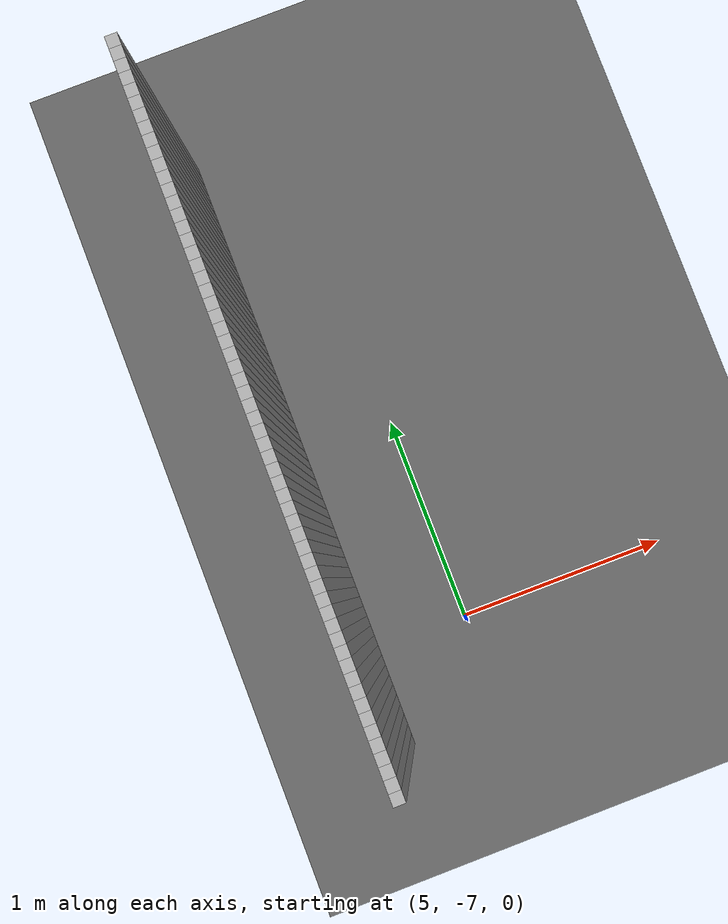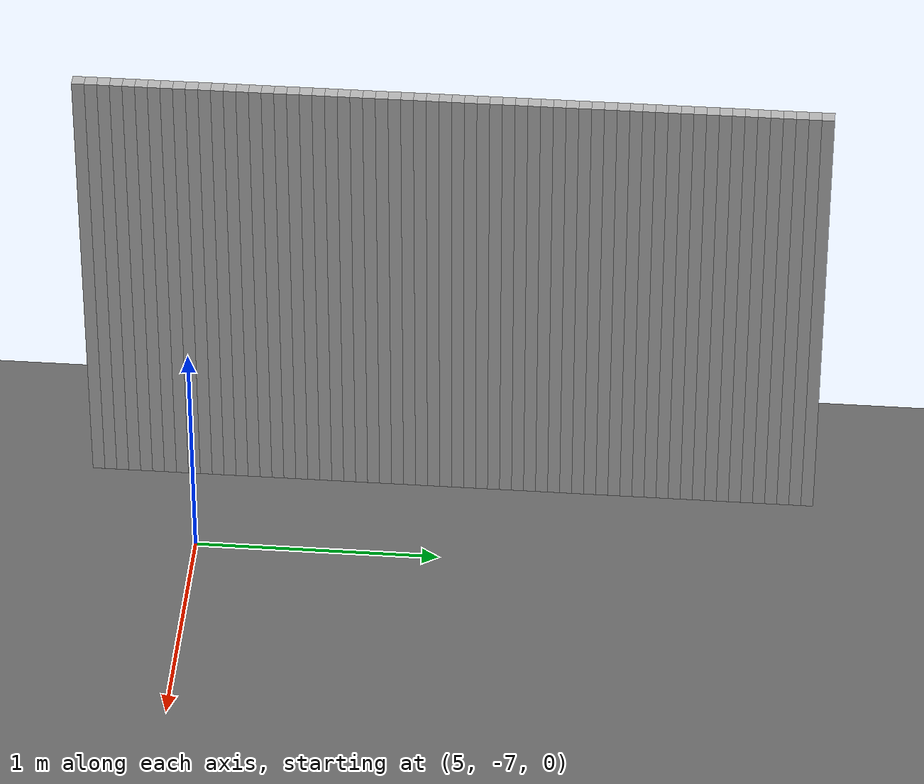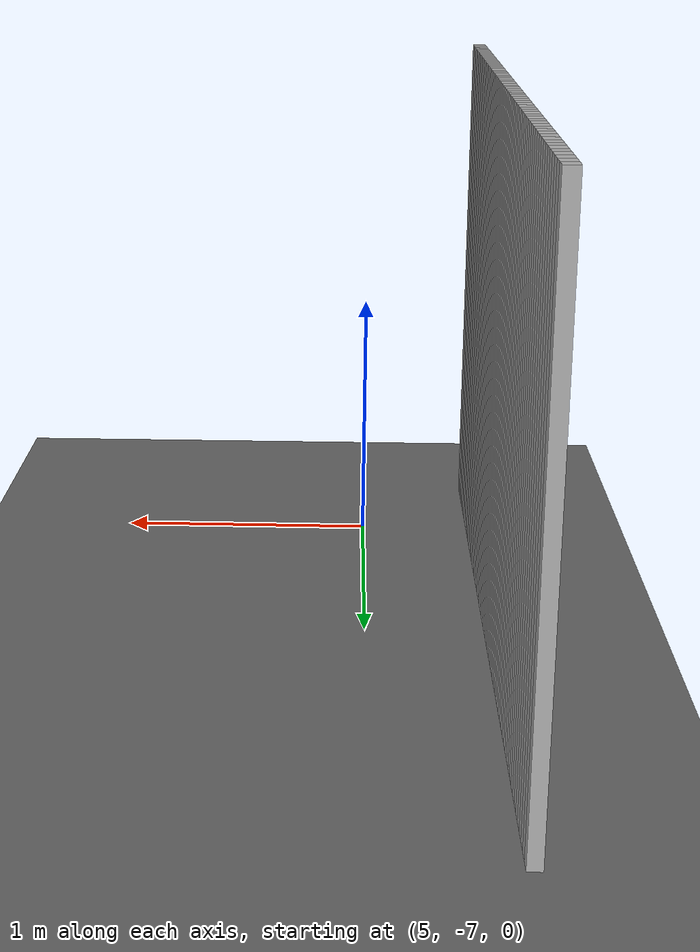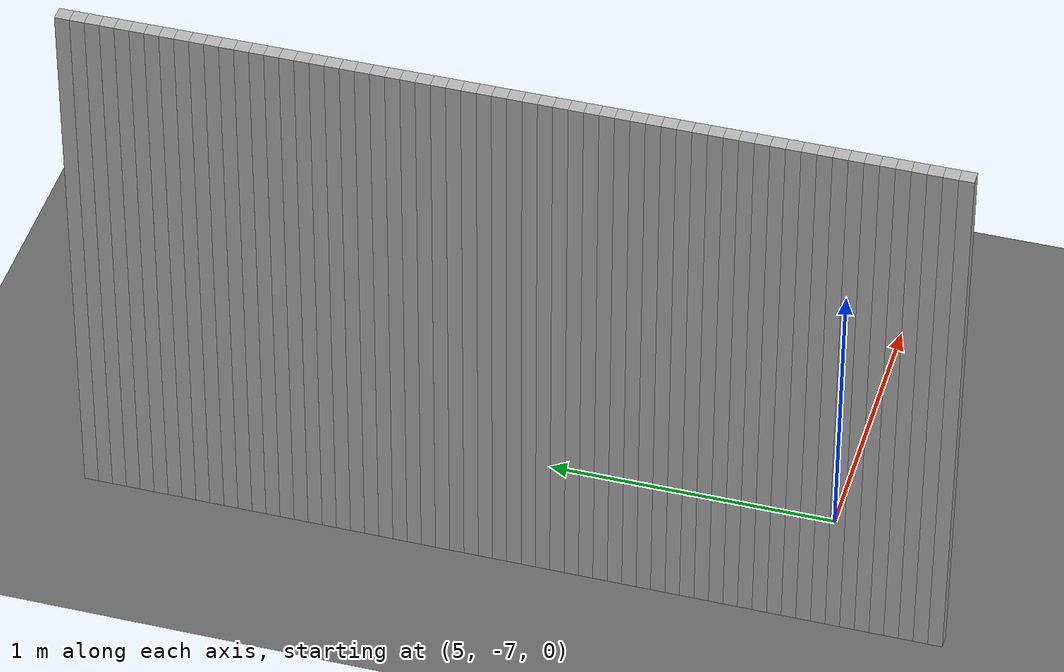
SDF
<sdf version="1.8">
 <world name="real_map">
  <model name="ground">
   <static>true</static>
   <link name="l">
    <collision name="c"><geometry><plane><normal>0 0 1</normal><size>100 100</size></plane></geometry></collision>
    <visual name="v">
     <geometry><plane><normal>0 0 1</normal><size>100 100</size></plane></geometry>
     <material><ambient>0.3 0.3 0.3 1</ambient><diffuse>0.4 0.4 0.4 1</diffuse></material>
    </visual>
   </link>
  </model>
  <model name="walls">
   <static>true</static>
   <link name="w1316">
    <pose>4.534 -4.508 1.000 0 0 0</pose>
    <collision name="c"><geometry><box><size>0.050 0.050 2.000</size></box></geometry></collision>
    <visual name="v">
     <geometry><box><size>0.050 0.050 2.000</size></box></geometry>
     <material><ambient>0.7 0.7 0.7 1</ambient><diffuse>0.7 0.7 0.7 1</diffuse></material>
    </visual>
   </link>
   <link name="w1318">
    <pose>4.534 -4.558 1.000 0 0 0</pose>
    <collision name="c"><geometry><box><size>0.050 0.050 2.000</size></box></geometry></collision>
    <visual name="v">
     <geometry><box><size>0.050 0.050 2.000</size></box></geometry>
     <material><ambient>0.7 0.7 0.7 1</ambient><diffuse>0.7 0.7 0.7 1</diffuse></material>
    </visual>
   </link>
   <link name="w1320">
    <pose>4.534 -4.608 1.000 0 0 0</pose>
    <collision name="c"><geometry><box><size>0.050 0.050 2.000</size></box></geometry></collision>
    <visual name="v">
     <geometry><box><size>0.050 0.050 2.000</size></box></geometry>
     <material><ambient>0.7 0.7 0.7 1</ambient><diffuse>0.7 0.7 0.7 1</diffuse></material>
    </visual>
   </link>
   <link name="w1322">
    <pose>4.534 -4.658 1.000 0 0 0</pose>
    <collision name="c"><geometry><box><size>0.050 0.050 2.000</size></box></geometry></collision>
    <visual name="v">
     <geometry><box><size>0.050 0.050 2.000</size></box></geometry>
     <material><ambient>0.7 0.7 0.7 1</ambient><diffuse>0.7 0.7 0.7 1</diffuse></material>
    </visual>
   </link>
   <link name="w1324">
    <pose>4.534 -4.708 1.000 0 0 0</pose>
    <collision name="c"><geometry><box><size>0.050 0.050 2.000</size></box></geometry></collision>
    <visual name="v">
     <geometry><box><size>0.050 0.050 2.000</size></box></geometry>
     <material><ambient>0.7 0.7 0.7 1</ambient><diffuse>0.7 0.7 0.7 1</diffuse></material>
    </visual>
   </link>
   <link name="w1326">
    <pose>4.534 -4.758 1.000 0 0 0</pose>
    <collision name="c"><geometry><box><size>0.050 0.050 2.000</size></box></geometry></collision>
    <visual name="v">
     <geometry><box><size>0.050 0.050 2.000</size></box></geometry>
     <material><ambient>0.7 0.7 0.7 1</ambient><diffuse>0.7 0.7 0.7 1</diffuse></material>
    </visual>
   </link>
   <link name="w1328">
    <pose>4.534 -4.808 1.000 0 0 0</pose>
    <collision name="c"><geometry><box><size>0.050 0.050 2.000</size></box></geometry></collision>
    <visual name="v">
     <geometry><box><size>0.050 0.050 2.000</size></box></geometry>
     <material><ambient>0.7 0.7 0.7 1</ambient><diffuse>0.7 0.7 0.7 1</diffuse></material>
    </visual>
   </link>
   <link name="w1330">
    <pose>4.534 -4.858 1.000 0 0 0</pose>
    <collision name="c"><geometry><box><size>0.050 0.050 2.000</size></box></geometry></collision>
    <visual name="v">
     <geometry><box><size>0.050 0.050 2.000</size></box></geometry>
     <material><ambient>0.7 0.7 0.7 1</ambient><diffuse>0.7 0.7 0.7 1</diffuse></material>
    </visual>
   </link>
   <link name="w1332">
    <pose>4.534 -4.908 1.000 0 0 0</pose>
    <collision name="c"><geometry><box><size>0.050 0.050 2.000</size></box></geometry></collision>
    <visual name="v">
     <geometry><box><size>0.050 0.050 2.000</size></box></geometry>
     <material><ambient>0.7 0.7 0.7 1</ambient><diffuse>0.7 0.7 0.7 1</diffuse></material>
    </visual>
   </link>
   <link name="w1334">
    <pose>4.534 -4.958 1.000 0 0 0</pose>
    <collision name="c"><geometry><box><size>0.050 0.050 2.000</size></box></geometry></collision>
    <visual name="v">
     <geometry><box><size>0.050 0.050 2.000</size></box></geometry>
     <material><ambient>0.7 0.7 0.7 1</ambient><diffuse>0.7 0.7 0.7 1</diffuse></material>
    </visual>
   </link>
   <link name="w1336">
    <pose>4.534 -5.008 1.000 0 0 0</pose>
    <collision name="c"><geometry><box><size>0.050 0.050 2.000</size></box></geometry></collision>
    <visual name="v">
     <geometry><box><size>0.050 0.050 2.000</size></box></geometry>
     <material><ambient>0.7 0.7 0.7 1</ambient><diffuse>0.7 0.7 0.7 1</diffuse></material>
    </visual>
   </link>
   <link name="w1338">
    <pose>4.534 -5.058 1.000 0 0 0</pose>
    <collision name="c"><geometry><box><size>0.050 0.050 2.000</size></box></geometry></collision>
    <visual name="v">
     <geometry><box><size>0.050 0.050 2.000</size></box></geometry>
     <material><ambient>0.7 0.7 0.7 1</ambient><diffuse>0.7 0.7 0.7 1</diffuse></material>
    </visual>
   </link>
   <link name="w1340">
    <pose>4.534 -5.108 1.000 0 0 0</pose>
    <collision name="c"><geometry><box><size>0.050 0.050 2.000</size></box></geometry></collision>
    <visual name="v">
     <geometry><box><size>0.050 0.050 2.000</size></box></geometry>
     <material><ambient>0.7 0.7 0.7 1</ambient><diffuse>0.7 0.7 0.7 1</diffuse></material>
    </visual>
   </link>
   <link name="w1342">
    <pose>4.534 -5.158 1.000 0 0 0</pose>
    <collision name="c"><geometry><box><size>0.050 0.050 2.000</size></box></geometry></collision>
    <visual name="v">
     <geometry><box><size>0.050 0.050 2.000</size></box></geometry>
     <material><ambient>0.7 0.7 0.7 1</ambient><diffuse>0.7 0.7 0.7 1</diffuse></material>
    </visual>
   </link>
   <link name="w1344">
    <pose>4.534 -5.208 1.000 0 0 0</pose>
    <collision name="c"><geometry><box><size>0.050 0.050 2.000</size></box></geometry></collision>
    <visual name="v">
     <geometry><box><size>0.050 0.050 2.000</size></box></geometry>
     <material><ambient>0.7 0.7 0.7 1</ambient><diffuse>0.7 0.7 0.7 1</diffuse></material>
    </visual>
   </link>
   <link name="w1346">
    <pose>4.534 -5.258 1.000 0 0 0</pose>
    <collision name="c"><geometry><box><size>0.050 0.050 2.000</size></box></geometry></collision>
    <visual name="v">
     <geometry><box><size>0.050 0.050 2.000</size></box></geometry>
     <material><ambient>0.7 0.7 0.7 1</ambient><diffuse>0.7 0.7 0.7 1</diffuse></material>
    </visual>
   </link>
   <link name="w1348">
    <pose>4.534 -5.308 1.000 0 0 0</pose>
    <collision name="c"><geometry><box><size>0.050 0.050 2.000</size></box></geometry></collision>
    <visual name="v">
     <geometry><box><size>0.050 0.050 2.000</size></box></geometry>
     <material><ambient>0.7 0.7 0.7 1</ambient><diffuse>0.7 0.7 0.7 1</diffuse></material>
    </visual>
   </link>
   <link name="w1350">
    <pose>4.534 -5.358 1.000 0 0 0</pose>
    <collision name="c"><geometry><box><size>0.050 0.050 2.000</size></box></geometry></collision>
    <visual name="v">
     <geometry><box><size>0.050 0.050 2.000</size></box></geometry>
     <material><ambient>0.7 0.7 0.7 1</ambient><diffuse>0.7 0.7 0.7 1</diffuse></material>
    </visual>
   </link>
   <link name="w1352">
    <pose>4.534 -5.408 1.000 0 0 0</pose>
    <collision name="c"><geometry><box><size>0.050 0.050 2.000</size></box></geometry></collision>
    <visual name="v">
     <geometry><box><size>0.050 0.050 2.000</size></box></geometry>
     <material><ambient>0.7 0.7 0.7 1</ambient><diffuse>0.7 0.7 0.7 1</diffuse></material>
    </visual>
   </link>
   <link name="w1354">
    <pose>4.534 -5.458 1.000 0 0 0</pose>
    <collision name="c"><geometry><box><size>0.050 0.050 2.000</size></box></geometry></collision>
    <visual name="v">
     <geometry><box><size>0.050 0.050 2.000</size></box></geometry>
     <material><ambient>0.7 0.7 0.7 1</ambient><diffuse>0.7 0.7 0.7 1</diffuse></material>
    </visual>
   </link>
   <link name="w1356">
    <pose>4.534 -5.508 1.000 0 0 0</pose>
    <collision name="c"><geometry><box><size>0.050 0.050 2.000</size></box></geometry></collision>
    <visual name="v">
     <geometry><box><size>0.050 0.050 2.000</size></box></geometry>
     <material><ambient>0.7 0.7 0.7 1</ambient><diffuse>0.7 0.7 0.7 1</diffuse></material>
    </visual>
   </link>
   <link name="w1358">
    <pose>4.534 -5.558 1.000 0 0 0</pose>
    <collision name="c"><geometry><box><size>0.050 0.050 2.000</size></box></geometry></collision>
    <visual name="v">
     <geometry><box><size>0.050 0.050 2.000</size></box></geometry>
     <material><ambient>0.7 0.7 0.7 1</ambient><diffuse>0.7 0.7 0.7 1</diffuse></material>
    </visual>
   </link>
   <link name="w1360">
    <pose>4.534 -5.608 1.000 0 0 0</pose>
    <collision name="c"><geometry><box><size>0.050 0.050 2.000</size></box></geometry></collision>
    <visual name="v">
     <geometry><box><size>0.050 0.050 2.000</size></box></geometry>
     <material><ambient>0.7 0.7 0.7 1</ambient><diffuse>0.7 0.7 0.7 1</diffuse></material>
    </visual>
   </link>
   <link name="w1362">
    <pose>4.534 -5.658 1.000 0 0 0</pose>
    <collision name="c"><geometry><box><size>0.050 0.050 2.000</size></box></geometry></collision>
    <visual name="v">
     <geometry><box><size>0.050 0.050 2.000</size></box></geometry>
     <material><ambient>0.7 0.7 0.7 1</ambient><diffuse>0.7 0.7 0.7 1</diffuse></material>
    </visual>
   </link>
   <link name="w1364">
    <pose>4.534 -5.708 1.000 0 0 0</pose>
    <collision name="c"><geometry><box><size>0.050 0.050 2.000</size></box></geometry></collision>
    <visual name="v">
     <geometry><box><size>0.050 0.050 2.000</size></box></geometry>
     <material><ambient>0.7 0.7 0.7 1</ambient><diffuse>0.7 0.7 0.7 1</diffuse></material>
    </visual>
   </link>
   <link name="w1366">
    <pose>4.534 -5.758 1.000 0 0 0</pose>
    <collision name="c"><geometry><box><size>0.050 0.050 2.000</size></box></geometry></collision>
    <visual name="v">
     <geometry><box><size>0.050 0.050 2.000</size></box></geometry>
     <material><ambient>0.7 0.7 0.7 1</ambient><diffuse>0.7 0.7 0.7 1</diffuse></material>
    </visual>
   </link>
   <link name="w1368">
    <pose>4.534 -5.808 1.000 0 0 0</pose>
    <collision name="c"><geometry><box><size>0.050 0.050 2.000</size></box></geometry></collision>
    <visual name="v">
     <geometry><box><size>0.050 0.050 2.000</size></box></geometry>
     <material><ambient>0.7 0.7 0.7 1</ambient><diffuse>0.7 0.7 0.7 1</diffuse></material>
    </visual>
   </link>
   <link name="w1370">
    <pose>4.534 -5.858 1.000 0 0 0</pose>
    <collision name="c"><geometry><box><size>0.050 0.050 2.000</size></box></geometry></collision>
    <visual name="v">
     <geometry><box><size>0.050 0.050 2.000</size></box></geometry>
     <material><ambient>0.7 0.7 0.7 1</ambient><diffuse>0.7 0.7 0.7 1</diffuse></material>
    </visual>
   </link>
   <link name="w1372">
    <pose>4.534 -5.908 1.000 0 0 0</pose>
    <collision name="c"><geometry><box><size>0.050 0.050 2.000</size></box></geometry></collision>
    <visual name="v">
     <geometry><box><size>0.050 0.050 2.000</size></box></geometry>
     <material><ambient>0.7 0.7 0.7 1</ambient><diffuse>0.7 0.7 0.7 1</diffuse></material>
    </visual>
   </link>
   <link name="w1374">
    <pose>4.534 -5.958 1.000 0 0 0</pose>
    <collision name="c"><geometry><box><size>0.050 0.050 2.000</size></box></geometry></collision>
    <visual name="v">
     <geometry><box><size>0.050 0.050 2.000</size></box></geometry>
     <material><ambient>0.7 0.7 0.7 1</ambient><diffuse>0.7 0.7 0.7 1</diffuse></material>
    </visual>
   </link>
   <link name="w1376">
    <pose>4.534 -6.008 1.000 0 0 0</pose>
    <collision name="c"><geometry><box><size>0.050 0.050 2.000</size></box></geometry></collision>
    <visual name="v">
     <geometry><box><size>0.050 0.050 2.000</size></box></geometry>
     <material><ambient>0.7 0.7 0.7 1</ambient><diffuse>0.7 0.7 0.7 1</diffuse></material>
    </visual>
   </link>
   <link name="w1378">
    <pose>4.534 -6.058 1.000 0 0 0</pose>
    <collision name="c"><geometry><box><size>0.050 0.050 2.000</size></box></geometry></collision>
    <visual name="v">
     <geometry><box><size>0.050 0.050 2.000</size></box></geometry>
     <material><ambient>0.7 0.7 0.7 1</ambient><diffuse>0.7 0.7 0.7 1</diffuse></material>
    </visual>
   </link>
   <link name="w1380">
    <pose>4.534 -6.108 1.000 0 0 0</pose>
    <collision name="c"><geometry><box><size>0.050 0.050 2.000</size></box></geometry></collision>
    <visual name="v">
     <geometry><box><size>0.050 0.050 2.000</size></box></geometry>
     <material><ambient>0.7 0.7 0.7 1</ambient><diffuse>0.7 0.7 0.7 1</diffuse></material>
    </visual>
   </link>
   <link name="w1382">
    <pose>4.534 -6.158 1.000 0 0 0</pose>
    <collision name="c"><geometry><box><size>0.050 0.050 2.000</size></box></geometry></collision>
    <visual name="v">
     <geometry><box><size>0.050 0.050 2.000</size></box></geometry>
     <material><ambient>0.7 0.7 0.7 1</ambient><diffuse>0.7 0.7 0.7 1</diffuse></material>
    </visual>
   </link>
   <link name="w1384">
    <pose>4.534 -6.208 1.000 0 0 0</pose>
    <collision name="c"><geometry><box><size>0.050 0.050 2.000</size></box></geometry></collision>
    <visual name="v">
     <geometry><box><size>0.050 0.050 2.000</size></box></geometry>
     <material><ambient>0.7 0.7 0.7 1</ambient><diffuse>0.7 0.7 0.7 1</diffuse></material>
    </visual>
   </link>
   <link name="w1386">
    <pose>4.534 -6.258 1.000 0 0 0</pose>
    <collision name="c"><geometry><box><size>0.050 0.050 2.000</size></box></geometry></collision>
    <visual name="v">
     <geometry><box><size>0.050 0.050 2.000</size></box></geometry>
     <material><ambient>0.7 0.7 0.7 1</ambient><diffuse>0.7 0.7 0.7 1</diffuse></material>
    </visual>
   </link>
   <link name="w1388">
    <pose>4.534 -6.308 1.000 0 0 0</pose>
    <collision name="c"><geometry><box><size>0.050 0.050 2.000</size></box></geometry></collision>
    <visual name="v">
     <geometry><box><size>0.050 0.050 2.000</size></box></geometry>
     <material><ambient>0.7 0.7 0.7 1</ambient><diffuse>0.7 0.7 0.7 1</diffuse></material>
    </visual>
   </link>
   <link name="w1390">
    <pose>4.534 -6.358 1.000 0 0 0</pose>
    <collision name="c"><geometry><box><size>0.050 0.050 2.000</size></box></geometry></collision>
    <visual name="v">
     <geometry><box><size>0.050 0.050 2.000</size></box></geometry>
     <material><ambient>0.7 0.7 0.7 1</ambient><diffuse>0.7 0.7 0.7 1</diffuse></material>
    </visual>
   </link>
   <link name="w1392">
    <pose>4.534 -6.408 1.000 0 0 0</pose>
    <collision name="c"><geometry><box><size>0.050 0.050 2.000</size></box></geometry></collision>
    <visual name="v">
     <geometry><box><size>0.050 0.050 2.000</size></box></geometry>
     <material><ambient>0.7 0.7 0.7 1</ambient><diffuse>0.7 0.7 0.7 1</diffuse></material>
    </visual>
   </link>
   <link name="w1394">
    <pose>4.534 -6.458 1.000 0 0 0</pose>
    <collision name="c"><geometry><box><size>0.050 0.050 2.000</size></box></geometry></collision>
    <visual name="v">
     <geometry><box><size>0.050 0.050 2.000</size></box></geometry>
     <material><ambient>0.7 0.7 0.7 1</ambient><diffuse>0.7 0.7 0.7 1</diffuse></material>
    </visual>
   </link>
   <link name="w1396">
    <pose>4.534 -6.508 1.000 0 0 0</pose>
    <collision name="c"><geometry><box><size>0.050 0.050 2.000</size></box></geometry></collision>
    <visual name="v">
     <geometry><box><size>0.050 0.050 2.000</size></box></geometry>
     <material><ambient>0.7 0.7 0.7 1</ambient><diffuse>0.7 0.7 0.7 1</diffuse></material>
    </visual>
   </link>
   <link name="w1398">
    <pose>4.534 -6.558 1.000 0 0 0</pose>
    <collision name="c"><geometry><box><size>0.050 0.050 2.000</size></box></geometry></collision>
    <visual name="v">
     <geometry><box><size>0.050 0.050 2.000</size></box></geometry>
     <material><ambient>0.7 0.7 0.7 1</ambient><diffuse>0.7 0.7 0.7 1</diffuse></material>
    </visual>
   </link>
   <link name="w1400">
    <pose>4.534 -6.608 1.000 0 0 0</pose>
    <collision name="c"><geometry><box><size>0.050 0.050 2.000</size></box></geometry></collision>
    <visual name="v">
     <geometry><box><size>0.050 0.050 2.000</size></box></geometry>
     <material><ambient>0.7 0.7 0.7 1</ambient><diffuse>0.7 0.7 0.7 1</diffuse></material>
    </visual>
   </link>
   <link name="w1402">
    <pose>4.534 -6.658 1.000 0 0 0</pose>
    <collision name="c"><geometry><box><size>0.050 0.050 2.000</size></box></geometry></collision>
    <visual name="v">
     <geometry><box><size>0.050 0.050 2.000</size></box></geometry>
     <material><ambient>0.7 0.7 0.7 1</ambient><diffuse>0.7 0.7 0.7 1</diffuse></material>
    </visual>
   </link>
   <link name="w1404">
    <pose>4.534 -6.708 1.000 0 0 0</pose>
    <collision name="c"><geometry><box><size>0.050 0.050 2.000</size></box></geometry></collision>
    <visual name="v">
     <geometry><box><size>0.050 0.050 2.000</size></box></geometry>
     <material><ambient>0.7 0.7 0.7 1</ambient><diffuse>0.7 0.7 0.7 1</diffuse></material>
    </visual>
   </link>
   <link name="w1406">
    <pose>4.534 -6.758 1.000 0 0 0</pose>
    <collision name="c"><geometry><box><size>0.050 0.050 2.000</size></box></geometry></collision>
    <visual name="v">
     <geometry><box><size>0.050 0.050 2.000</size></box></geometry>
     <material><ambient>0.7 0.7 0.7 1</ambient><diffuse>0.7 0.7 0.7 1</diffuse></material>
    </visual>
   </link>
   <link name="w1408">
    <pose>4.534 -6.808 1.000 0 0 0</pose>
    <collision name="c"><geometry><box><size>0.050 0.050 2.000</size></box></geometry></collision>
    <visual name="v">
     <geometry><box><size>0.050 0.050 2.000</size></box></geometry>
     <material><ambient>0.7 0.7 0.7 1</ambient><diffuse>0.7 0.7 0.7 1</diffuse></material>
    </visual>
   </link>
   <link name="w1410">
    <pose>4.534 -6.858 1.000 0 0 0</pose>
    <collision name="c"><geometry><box><size>0.050 0.050 2.000</size></box></geometry></collision>
    <visual name="v">
     <geometry><box><size>0.050 0.050 2.000</size></box></geometry>
     <material><ambient>0.7 0.7 0.7 1</ambient><diffuse>0.7 0.7 0.7 1</diffuse></material>
    </visual>
   </link>
   <link name="w1412">
    <pose>4.534 -6.908 1.000 0 0 0</pose>
    <collision name="c"><geometry><box><size>0.050 0.050 2.000</size></box></geometry></collision>
    <visual name="v">
     <geometry><box><size>0.050 0.050 2.000</size></box></geometry>
     <material><ambient>0.7 0.7 0.7 1</ambient><diffuse>0.7 0.7 0.7 1</diffuse></material>
    </visual>
   </link>
   <link name="w1414">
    <pose>4.534 -6.958 1.000 0 0 0</pose>
    <collision name="c"><geometry><box><size>0.050 0.050 2.000</size></box></geometry></collision>
    <visual name="v">
     <geometry><box><size>0.050 0.050 2.000</size></box></geometry>
     <material><ambient>0.7 0.7 0.7 1</ambient><diffuse>0.7 0.7 0.7 1</diffuse></material>
    </visual>
   </link>
   <link name="w1416">
    <pose>4.534 -7.008 1.000 0 0 0</pose>
    <collision name="c"><geometry><box><size>0.050 0.050 2.000</size></box></geometry></collision>
    <visual name="v">
     <geometry><box><size>0.050 0.050 2.000</size></box></geometry>
     <material><ambient>0.7 0.7 0.7 1</ambient><diffuse>0.7 0.7 0.7 1</diffuse></material>
    </visual>
   </link>
   <link name="w1418">
    <pose>4.534 -7.058 1.000 0 0 0</pose>
    <collision name="c"><geometry><box><size>0.050 0.050 2.000</size></box></geometry></collision>
    <visual name="v">
     <geometry><box><size>0.050 0.050 2.000</size></box></geometry>
     <material><ambient>0.7 0.7 0.7 1</ambient><diffuse>0.7 0.7 0.7 1</diffuse></material>
    </visual>
   </link>
   <link name="w1420">
    <pose>4.534 -7.108 1.000 0 0 0</pose>
    <collision name="c"><geometry><box><size>0.050 0.050 2.000</size></box></geometry></collision>
    <visual name="v">
     <geometry><box><size>0.050 0.050 2.000</size></box></geometry>
     <material><ambient>0.7 0.7 0.7 1</ambient><diffuse>0.7 0.7 0.7 1</diffuse></material>
    </visual>
   </link>
   <link name="w1422">
    <pose>4.534 -7.158 1.000 0 0 0</pose>
    <collision name="c"><geometry><box><size>0.050 0.050 2.000</size></box></geometry></collision>
    <visual name="v">
     <geometry><box><size>0.050 0.050 2.000</size></box></geometry>
     <material><ambient>0.7 0.7 0.7 1</ambient><diffuse>0.7 0.7 0.7 1</diffuse></material>
    </visual>
   </link>
   <link name="w1424">
    <pose>4.534 -7.208 1.000 0 0 0</pose>
    <collision name="c"><geometry><box><size>0.050 0.050 2.000</size></box></geometry></collision>
    <visual name="v">
     <geometry><box><size>0.050 0.050 2.000</size></box></geometry>
     <material><ambient>0.7 0.7 0.7 1</ambient><diffuse>0.7 0.7 0.7 1</diffuse></material>
    </visual>
   </link>
   <link name="w1426">
    <pose>4.534 -7.258 1.000 0 0 0</pose>
    <collision name="c"><geometry><box><size>0.050 0.050 2.000</size></box></geometry></collision>
    <visual name="v">
     <geometry><box><size>0.050 0.050 2.000</size></box></geometry>
     <material><ambient>0.7 0.7 0.7 1</ambient><diffuse>0.7 0.7 0.7 1</diffuse></material>
    </visual>
   </link>
   <link name="w1428">
    <pose>4.534 -7.308 1.000 0 0 0</pose>
    <collision name="c"><geometry><box><size>0.050 0.050 2.000</size></box></geometry></collision>
    <visual name="v">
     <geometry><box><size>0.050 0.050 2.000</size></box></geometry>
     <material><ambient>0.7 0.7 0.7 1</ambient><diffuse>0.7 0.7 0.7 1</diffuse></material>
    </visual>
   </link>
   <link name="w1430">
    <pose>4.534 -7.358 1.000 0 0 0</pose>
    <collision name="c"><geometry><box><size>0.050 0.050 2.000</size></box></geometry></collision>
    <visual name="v">
     <geometry><box><size>0.050 0.050 2.000</size></box></geometry>
     <material><ambient>0.7 0.7 0.7 1</ambient><diffuse>0.7 0.7 0.7 1</diffuse></material>
    </visual>
   </link>
   <link name="w1432">
    <pose>4.534 -7.408 1.000 0 0 0</pose>
    <collision name="c"><geometry><box><size>0.050 0.050 2.000</size></box></geometry></collision>
    <visual name="v">
     <geometry><box><size>0.050 0.050 2.000</size></box></geometry>
     <material><ambient>0.7 0.7 0.7 1</ambient><diffuse>0.7 0.7 0.7 1</diffuse></material>
    </visual>
   </link>
   <link name="w1434">
    <pose>4.534 -7.458 1.000 0 0 0</pose>
    <collision name="c"><geometry><box><size>0.050 0.050 2.000</size></box></geometry></collision>
    <visual name="v">
     <geometry><box><size>0.050 0.050 2.000</size></box></geometry>
     <material><ambient>0.7 0.7 0.7 1</ambient><diffuse>0.7 0.7 0.7 1</diffuse></material>
    </visual>
   </link>
  </model>
 </world>
</sdf>
